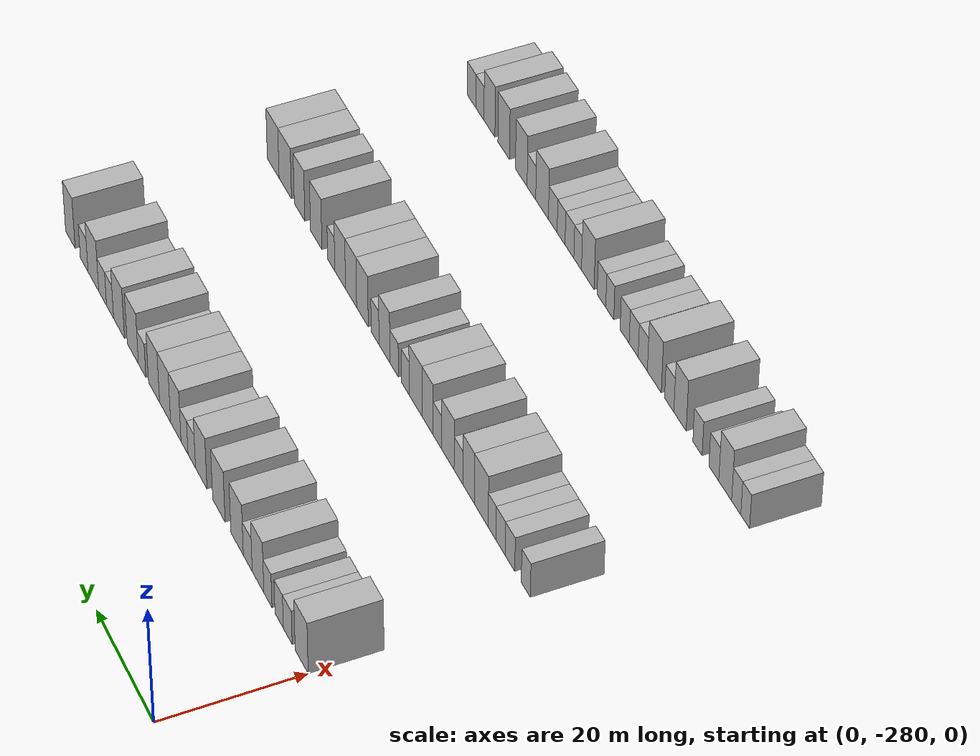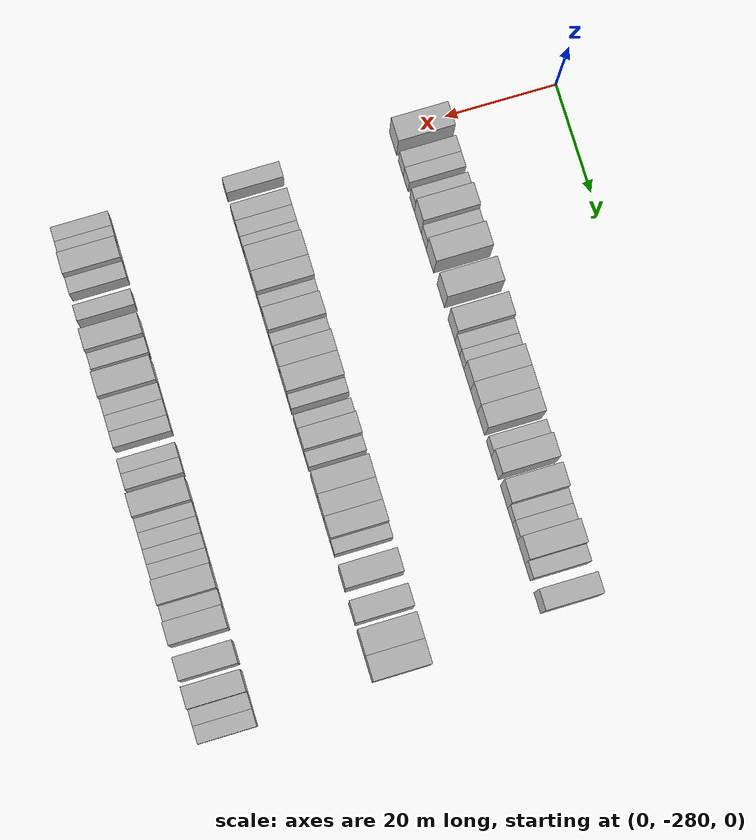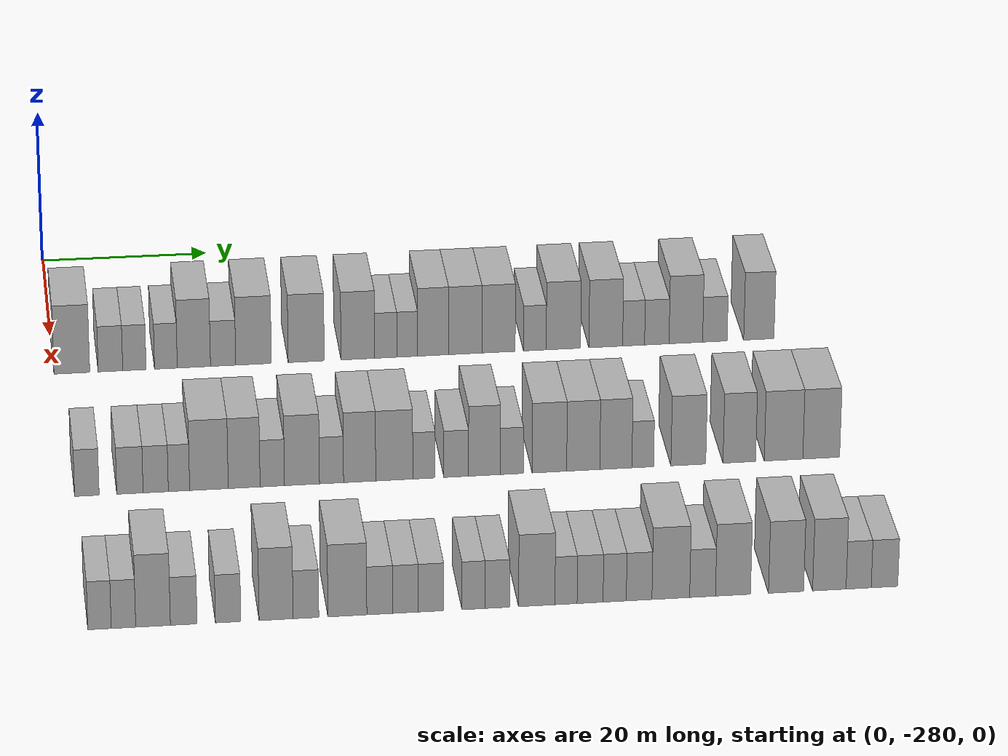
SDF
<sdf version="1.6">
 <world name="default">
  <model name="building_1">
   <static>1</static>
   <pose>25.0000 -277.8906 0 0.000000 0.000000 0.000000</pose>
   <link name="link">
    <pose>0 0 4.50 0 0 0</pose>
    <collision name="collision"><geometry><box><size>10.0000 4.2188 9.0000</size></box></geometry></collision>
    <visual name="visual">
     <cast_shadows>0</cast_shadows>
     <geometry><box><size>10.0000 4.2188 9.0000</size></box></geometry>
     <material>
      <script>
       <uri>model://HANNAS_wall/materials/scripts</uri>
       <uri>model://HANNAS_wall/materials/textures</uri>
       <name>vrc/HANNAS_wall</name>
      </script>
     </material>
    </visual>
   </link>
  </model>
  <model name="building_2">
   <static>1</static>
   <pose>25.0000 -273.3320 0 0.000000 0.000000 0.000000</pose>
   <link name="link">
    <pose>0 0 3.00 0 0 0</pose>
    <collision name="collision"><geometry><box><size>10.0000 2.8983 6.0000</size></box></geometry></collision>
    <visual name="visual">
     <cast_shadows>0</cast_shadows>
     <geometry><box><size>10.0000 2.8983 6.0000</size></box></geometry>
     <material>
      <script>
       <uri>model://HANNAS_wall/materials/scripts</uri>
       <uri>model://HANNAS_wall/materials/textures</uri>
       <name>vrc/HANNAS_wall</name>
      </script>
     </material>
    </visual>
   </link>
  </model>
  <model name="building_3">
   <static>1</static>
   <pose>25.0000 -270.5015 0 0.000000 0.000000 0.000000</pose>
   <link name="link">
    <pose>0 0 3.00 0 0 0</pose>
    <collision name="collision"><geometry><box><size>10.0000 2.7627 6.0000</size></box></geometry></collision>
    <visual name="visual">
     <cast_shadows>0</cast_shadows>
     <geometry><box><size>10.0000 2.7627 6.0000</size></box></geometry>
     <material>
      <script>
       <uri>model://HANNAS_wall/materials/scripts</uri>
       <uri>model://HANNAS_wall/materials/textures</uri>
       <name>vrc/HANNAS_wall</name>
      </script>
     </material>
    </visual>
   </link>
  </model>
  <model name="building_4">
   <static>1</static>
   <pose>25.0000 -266.7735 0 0.000000 0.000000 0.000000</pose>
   <link name="link">
    <pose>0 0 3.00 0 0 0</pose>
    <collision name="collision"><geometry><box><size>10.0000 2.6932 6.0000</size></box></geometry></collision>
    <visual name="visual">
     <cast_shadows>0</cast_shadows>
     <geometry><box><size>10.0000 2.6932 6.0000</size></box></geometry>
     <material>
      <script>
       <uri>model://HANNAS_wall/materials/scripts</uri>
       <uri>model://HANNAS_wall/materials/textures</uri>
       <name>vrc/HANNAS_wall</name>
      </script>
     </material>
    </visual>
   </link>
  </model>
  <model name="building_5">
   <static>1</static>
   <pose>25.0000 -263.4617 0 0.000000 0.000000 0.000000</pose>
   <link name="link">
    <pose>0 0 4.50 0 0 0</pose>
    <collision name="collision"><geometry><box><size>10.0000 3.9302 9.0000</size></box></geometry></collision>
    <visual name="visual">
     <cast_shadows>0</cast_shadows>
     <geometry><box><size>10.0000 3.9302 9.0000</size></box></geometry>
     <material>
      <script>
       <uri>model://HANNAS_wall/materials/scripts</uri>
       <uri>model://HANNAS_wall/materials/textures</uri>
       <name>vrc/HANNAS_wall</name>
      </script>
     </material>
    </visual>
   </link>
  </model>
  <model name="building_6">
   <static>1</static>
   <pose>25.0000 -259.9984 0 0.000000 0.000000 0.000000</pose>
   <link name="link">
    <pose>0 0 3.00 0 0 0</pose>
    <collision name="collision"><geometry><box><size>10.0000 2.9965 6.0000</size></box></geometry></collision>
    <visual name="visual">
     <cast_shadows>0</cast_shadows>
     <geometry><box><size>10.0000 2.9965 6.0000</size></box></geometry>
     <material>
      <script>
       <uri>model://HANNAS_wall/materials/scripts</uri>
       <uri>model://HANNAS_wall/materials/textures</uri>
       <name>vrc/HANNAS_wall</name>
      </script>
     </material>
    </visual>
   </link>
  </model>
  <model name="building_7">
   <static>1</static>
   <pose>25.0000 -256.3856 0 0.000000 0.000000 0.000000</pose>
   <link name="link">
    <pose>0 0 4.50 0 0 0</pose>
    <collision name="collision"><geometry><box><size>10.0000 4.2292 9.0000</size></box></geometry></collision>
    <visual name="visual">
     <cast_shadows>0</cast_shadows>
     <geometry><box><size>10.0000 4.2292 9.0000</size></box></geometry>
     <material>
      <script>
       <uri>model://HANNAS_wall/materials/scripts</uri>
       <uri>model://HANNAS_wall/materials/textures</uri>
       <name>vrc/HANNAS_wall</name>
      </script>
     </material>
    </visual>
   </link>
  </model>
  <model name="building_8">
   <static>1</static>
   <pose>25.0000 -250.1284 0 0.000000 0.000000 0.000000</pose>
   <link name="link">
    <pose>0 0 4.50 0 0 0</pose>
    <collision name="collision"><geometry><box><size>10.0000 4.2851 9.0000</size></box></geometry></collision>
    <visual name="visual">
     <cast_shadows>0</cast_shadows>
     <geometry><box><size>10.0000 4.2851 9.0000</size></box></geometry>
     <material>
      <script>
       <uri>model://HANNAS_wall/materials/scripts</uri>
       <uri>model://HANNAS_wall/materials/textures</uri>
       <name>vrc/HANNAS_wall</name>
      </script>
     </material>
    </visual>
   </link>
  </model>
  <model name="building_9">
   <static>1</static>
   <pose>25.0000 -243.9807 0 0.000000 0.000000 0.000000</pose>
   <link name="link">
    <pose>0 0 4.50 0 0 0</pose>
    <collision name="collision"><geometry><box><size>10.0000 4.0104 9.0000</size></box></geometry></collision>
    <visual name="visual">
     <cast_shadows>0</cast_shadows>
     <geometry><box><size>10.0000 4.0104 9.0000</size></box></geometry>
     <material>
      <script>
       <uri>model://HANNAS_wall/materials/scripts</uri>
       <uri>model://HANNAS_wall/materials/textures</uri>
       <name>vrc/HANNAS_wall</name>
      </script>
     </material>
    </visual>
   </link>
  </model>
  <model name="building_10">
   <static>1</static>
   <pose>25.0000 -240.6543 0 0.000000 0.000000 0.000000</pose>
   <link name="link">
    <pose>0 0 3.00 0 0 0</pose>
    <collision name="collision"><geometry><box><size>10.0000 2.6423 6.0000</size></box></geometry></collision>
    <visual name="visual">
     <cast_shadows>0</cast_shadows>
     <geometry><box><size>10.0000 2.6423 6.0000</size></box></geometry>
     <material>
      <script>
       <uri>model://HANNAS_wall/materials/scripts</uri>
       <uri>model://HANNAS_wall/materials/textures</uri>
       <name>vrc/HANNAS_wall</name>
      </script>
     </material>
    </visual>
   </link>
  </model>
  <model name="building_11">
   <static>1</static>
   <pose>25.0000 -238.0924 0 0.000000 0.000000 0.000000</pose>
   <link name="link">
    <pose>0 0 3.00 0 0 0</pose>
    <collision name="collision"><geometry><box><size>10.0000 2.4815 6.0000</size></box></geometry></collision>
    <visual name="visual">
     <cast_shadows>0</cast_shadows>
     <geometry><box><size>10.0000 2.4815 6.0000</size></box></geometry>
     <material>
      <script>
       <uri>model://HANNAS_wall/materials/scripts</uri>
       <uri>model://HANNAS_wall/materials/textures</uri>
       <name>vrc/HANNAS_wall</name>
      </script>
     </material>
    </visual>
   </link>
  </model>
  <model name="building_12">
   <static>1</static>
   <pose>25.0000 -234.9972 0 0.000000 0.000000 0.000000</pose>
   <link name="link">
    <pose>0 0 4.50 0 0 0</pose>
    <collision name="collision"><geometry><box><size>10.0000 3.7088 9.0000</size></box></geometry></collision>
    <visual name="visual">
     <cast_shadows>0</cast_shadows>
     <geometry><box><size>10.0000 3.7088 9.0000</size></box></geometry>
     <material>
      <script>
       <uri>model://HANNAS_wall/materials/scripts</uri>
       <uri>model://HANNAS_wall/materials/textures</uri>
       <name>vrc/HANNAS_wall</name>
      </script>
     </material>
    </visual>
   </link>
  </model>
  <model name="building_13">
   <static>1</static>
   <pose>25.0000 -231.1605 0 0.000000 0.000000 0.000000</pose>
   <link name="link">
    <pose>0 0 4.50 0 0 0</pose>
    <collision name="collision"><geometry><box><size>10.0000 3.9646 9.0000</size></box></geometry></collision>
    <visual name="visual">
     <cast_shadows>0</cast_shadows>
     <geometry><box><size>10.0000 3.9646 9.0000</size></box></geometry>
     <material>
      <script>
       <uri>model://HANNAS_wall/materials/scripts</uri>
       <uri>model://HANNAS_wall/materials/textures</uri>
       <name>vrc/HANNAS_wall</name>
      </script>
     </material>
    </visual>
   </link>
  </model>
  <model name="building_14">
   <static>1</static>
   <pose>25.0000 -227.1879 0 0.000000 0.000000 0.000000</pose>
   <link name="link">
    <pose>0 0 4.50 0 0 0</pose>
    <collision name="collision"><geometry><box><size>10.0000 3.9807 9.0000</size></box></geometry></collision>
    <visual name="visual">
     <cast_shadows>0</cast_shadows>
     <geometry><box><size>10.0000 3.9807 9.0000</size></box></geometry>
     <material>
      <script>
       <uri>model://HANNAS_wall/materials/scripts</uri>
       <uri>model://HANNAS_wall/materials/textures</uri>
       <name>vrc/HANNAS_wall</name>
      </script>
     </material>
    </visual>
   </link>
  </model>
  <model name="building_15">
   <static>1</static>
   <pose>25.0000 -222.8394 0 0.000000 0.000000 0.000000</pose>
   <link name="link">
    <pose>0 0 3.00 0 0 0</pose>
    <collision name="collision"><geometry><box><size>10.0000 2.7163 6.0000</size></box></geometry></collision>
    <visual name="visual">
     <cast_shadows>0</cast_shadows>
     <geometry><box><size>10.0000 2.7163 6.0000</size></box></geometry>
     <material>
      <script>
       <uri>model://HANNAS_wall/materials/scripts</uri>
       <uri>model://HANNAS_wall/materials/textures</uri>
       <name>vrc/HANNAS_wall</name>
      </script>
     </material>
    </visual>
   </link>
  </model>
  <model name="building_16">
   <static>1</static>
   <pose>25.0000 -219.4220 0 0.000000 0.000000 0.000000</pose>
   <link name="link">
    <pose>0 0 4.50 0 0 0</pose>
    <collision name="collision"><geometry><box><size>10.0000 4.1185 9.0000</size></box></geometry></collision>
    <visual name="visual">
     <cast_shadows>0</cast_shadows>
     <geometry><box><size>10.0000 4.1185 9.0000</size></box></geometry>
     <material>
      <script>
       <uri>model://HANNAS_wall/materials/scripts</uri>
       <uri>model://HANNAS_wall/materials/textures</uri>
       <name>vrc/HANNAS_wall</name>
      </script>
     </material>
    </visual>
   </link>
  </model>
  <model name="building_17">
   <static>1</static>
   <pose>25.0000 -214.3357 0 0.000000 0.000000 0.000000</pose>
   <link name="link">
    <pose>0 0 4.50 0 0 0</pose>
    <collision name="collision"><geometry><box><size>10.0000 4.0542 9.0000</size></box></geometry></collision>
    <visual name="visual">
     <cast_shadows>0</cast_shadows>
     <geometry><box><size>10.0000 4.0542 9.0000</size></box></geometry>
     <material>
      <script>
       <uri>model://HANNAS_wall/materials/scripts</uri>
       <uri>model://HANNAS_wall/materials/textures</uri>
       <name>vrc/HANNAS_wall</name>
      </script>
     </material>
    </visual>
   </link>
  </model>
  <model name="building_18">
   <static>1</static>
   <pose>25.0000 -210.9872 0 0.000000 0.000000 0.000000</pose>
   <link name="link">
    <pose>0 0 3.00 0 0 0</pose>
    <collision name="collision"><geometry><box><size>10.0000 2.6428 6.0000</size></box></geometry></collision>
    <visual name="visual">
     <cast_shadows>0</cast_shadows>
     <geometry><box><size>10.0000 2.6428 6.0000</size></box></geometry>
     <material>
      <script>
       <uri>model://HANNAS_wall/materials/scripts</uri>
       <uri>model://HANNAS_wall/materials/textures</uri>
       <name>vrc/HANNAS_wall</name>
      </script>
     </material>
    </visual>
   </link>
  </model>
  <model name="building_19">
   <static>1</static>
   <pose>25.0000 -208.1965 0 0.000000 0.000000 0.000000</pose>
   <link name="link">
    <pose>0 0 3.00 0 0 0</pose>
    <collision name="collision"><geometry><box><size>10.0000 2.9387 6.0000</size></box></geometry></collision>
    <visual name="visual">
     <cast_shadows>0</cast_shadows>
     <geometry><box><size>10.0000 2.9387 6.0000</size></box></geometry>
     <material>
      <script>
       <uri>model://HANNAS_wall/materials/scripts</uri>
       <uri>model://HANNAS_wall/materials/textures</uri>
       <name>vrc/HANNAS_wall</name>
      </script>
     </material>
    </visual>
   </link>
  </model>
  <model name="building_20">
   <static>1</static>
   <pose>25.0000 -204.7054 0 0.000000 0.000000 0.000000</pose>
   <link name="link">
    <pose>0 0 4.50 0 0 0</pose>
    <collision name="collision"><geometry><box><size>10.0000 4.0435 9.0000</size></box></geometry></collision>
    <visual name="visual">
     <cast_shadows>0</cast_shadows>
     <geometry><box><size>10.0000 4.0435 9.0000</size></box></geometry>
     <material>
      <script>
       <uri>model://HANNAS_wall/materials/scripts</uri>
       <uri>model://HANNAS_wall/materials/textures</uri>
       <name>vrc/HANNAS_wall</name>
      </script>
     </material>
    </visual>
   </link>
  </model>
  <model name="building_21">
   <static>1</static>
   <pose>25.0000 -201.2063 0 0.000000 0.000000 0.000000</pose>
   <link name="link">
    <pose>0 0 3.00 0 0 0</pose>
    <collision name="collision"><geometry><box><size>10.0000 2.9545 6.0000</size></box></geometry></collision>
    <visual name="visual">
     <cast_shadows>0</cast_shadows>
     <geometry><box><size>10.0000 2.9545 6.0000</size></box></geometry>
     <material>
      <script>
       <uri>model://HANNAS_wall/materials/scripts</uri>
       <uri>model://HANNAS_wall/materials/textures</uri>
       <name>vrc/HANNAS_wall</name>
      </script>
     </material>
    </visual>
   </link>
  </model>
  <model name="building_22">
   <static>1</static>
   <pose>25.0000 -195.9023 0 0.000000 0.000000 0.000000</pose>
   <link name="link">
    <pose>0 0 4.50 0 0 0</pose>
    <collision name="collision"><geometry><box><size>10.0000 3.6534 9.0000</size></box></geometry></collision>
    <visual name="visual">
     <cast_shadows>0</cast_shadows>
     <geometry><box><size>10.0000 3.6534 9.0000</size></box></geometry>
     <material>
      <script>
       <uri>model://HANNAS_wall/materials/scripts</uri>
       <uri>model://HANNAS_wall/materials/textures</uri>
       <name>vrc/HANNAS_wall</name>
      </script>
     </material>
    </visual>
   </link>
  </model>
  <model name="building_142">
   <static>1</static>
   <pose>55.0000 -277.6102 0 0.000000 0.000000 0.000000</pose>
   <link name="link">
    <pose>0 0 3.00 0 0 0</pose>
    <collision name="collision"><geometry><box><size>10.0000 2.7796 6.0000</size></box></geometry></collision>
    <visual name="visual">
     <cast_shadows>0</cast_shadows>
     <geometry><box><size>10.0000 2.7796 6.0000</size></box></geometry>
     <material>
      <script>
       <uri>model://HANNAS_wall/materials/scripts</uri>
       <uri>model://HANNAS_wall/materials/textures</uri>
       <name>vrc/HANNAS_wall</name>
      </script>
     </material>
    </visual>
   </link>
  </model>
  <model name="building_143">
   <static>1</static>
   <pose>55.0000 -272.7243 0 0.000000 0.000000 0.000000</pose>
   <link name="link">
    <pose>0 0 3.00 0 0 0</pose>
    <collision name="collision"><geometry><box><size>10.0000 2.9922 6.0000</size></box></geometry></collision>
    <visual name="visual">
     <cast_shadows>0</cast_shadows>
     <geometry><box><size>10.0000 2.9922 6.0000</size></box></geometry>
     <material>
      <script>
       <uri>model://HANNAS_wall/materials/scripts</uri>
       <uri>model://HANNAS_wall/materials/textures</uri>
       <name>vrc/HANNAS_wall</name>
      </script>
     </material>
    </visual>
   </link>
  </model>
  <model name="building_144">
   <static>1</static>
   <pose>55.0000 -269.7951 0 0.000000 0.000000 0.000000</pose>
   <link name="link">
    <pose>0 0 3.00 0 0 0</pose>
    <collision name="collision"><geometry><box><size>10.0000 2.8663 6.0000</size></box></geometry></collision>
    <visual name="visual">
     <cast_shadows>0</cast_shadows>
     <geometry><box><size>10.0000 2.8663 6.0000</size></box></geometry>
     <material>
      <script>
       <uri>model://HANNAS_wall/materials/scripts</uri>
       <uri>model://HANNAS_wall/materials/textures</uri>
       <name>vrc/HANNAS_wall</name>
      </script>
     </material>
    </visual>
   </link>
  </model>
  <model name="building_145">
   <static>1</static>
   <pose>55.0000 -267.1503 0 0.000000 0.000000 0.000000</pose>
   <link name="link">
    <pose>0 0 3.00 0 0 0</pose>
    <collision name="collision"><geometry><box><size>10.0000 2.4232 6.0000</size></box></geometry></collision>
    <visual name="visual">
     <cast_shadows>0</cast_shadows>
     <geometry><box><size>10.0000 2.4232 6.0000</size></box></geometry>
     <material>
      <script>
       <uri>model://HANNAS_wall/materials/scripts</uri>
       <uri>model://HANNAS_wall/materials/textures</uri>
       <name>vrc/HANNAS_wall</name>
      </script>
     </material>
    </visual>
   </link>
  </model>
  <model name="building_146">
   <static>1</static>
   <pose>55.0000 -263.7410 0 0.000000 0.000000 0.000000</pose>
   <link name="link">
    <pose>0 0 4.50 0 0 0</pose>
    <collision name="collision"><geometry><box><size>10.0000 4.3955 9.0000</size></box></geometry></collision>
    <visual name="visual">
     <cast_shadows>0</cast_shadows>
     <geometry><box><size>10.0000 4.3955 9.0000</size></box></geometry>
     <material>
      <script>
       <uri>model://HANNAS_wall/materials/scripts</uri>
       <uri>model://HANNAS_wall/materials/textures</uri>
       <name>vrc/HANNAS_wall</name>
      </script>
     </material>
    </visual>
   </link>
  </model>
  <model name="building_147">
   <static>1</static>
   <pose>55.0000 -259.7287 0 0.000000 0.000000 0.000000</pose>
   <link name="link">
    <pose>0 0 4.50 0 0 0</pose>
    <collision name="collision"><geometry><box><size>10.0000 3.6291 9.0000</size></box></geometry></collision>
    <visual name="visual">
     <cast_shadows>0</cast_shadows>
     <geometry><box><size>10.0000 3.6291 9.0000</size></box></geometry>
     <material>
      <script>
       <uri>model://HANNAS_wall/materials/scripts</uri>
       <uri>model://HANNAS_wall/materials/textures</uri>
       <name>vrc/HANNAS_wall</name>
      </script>
     </material>
    </visual>
   </link>
  </model>
  <model name="building_148">
   <static>1</static>
   <pose>55.0000 -256.5218 0 0.000000 0.000000 0.000000</pose>
   <link name="link">
    <pose>0 0 3.00 0 0 0</pose>
    <collision name="collision"><geometry><box><size>10.0000 2.7846 6.0000</size></box></geometry></collision>
    <visual name="visual">
     <cast_shadows>0</cast_shadows>
     <geometry><box><size>10.0000 2.7846 6.0000</size></box></geometry>
     <material>
      <script>
       <uri>model://HANNAS_wall/materials/scripts</uri>
       <uri>model://HANNAS_wall/materials/textures</uri>
       <name>vrc/HANNAS_wall</name>
      </script>
     </material>
    </visual>
   </link>
  </model>
  <model name="building_149">
   <static>1</static>
   <pose>55.0000 -253.1338 0 0.000000 0.000000 0.000000</pose>
   <link name="link">
    <pose>0 0 4.50 0 0 0</pose>
    <collision name="collision"><geometry><box><size>10.0000 3.9915 9.0000</size></box></geometry></collision>
    <visual name="visual">
     <cast_shadows>0</cast_shadows>
     <geometry><box><size>10.0000 3.9915 9.0000</size></box></geometry>
     <material>
      <script>
       <uri>model://HANNAS_wall/materials/scripts</uri>
       <uri>model://HANNAS_wall/materials/textures</uri>
       <name>vrc/HANNAS_wall</name>
      </script>
     </material>
    </visual>
   </link>
  </model>
  <model name="building_150">
   <static>1</static>
   <pose>55.0000 -249.7633 0 0.000000 0.000000 0.000000</pose>
   <link name="link">
    <pose>0 0 3.00 0 0 0</pose>
    <collision name="collision"><geometry><box><size>10.0000 2.7495 6.0000</size></box></geometry></collision>
    <visual name="visual">
     <cast_shadows>0</cast_shadows>
     <geometry><box><size>10.0000 2.7495 6.0000</size></box></geometry>
     <material>
      <script>
       <uri>model://HANNAS_wall/materials/scripts</uri>
       <uri>model://HANNAS_wall/materials/textures</uri>
       <name>vrc/HANNAS_wall</name>
      </script>
     </material>
    </visual>
   </link>
  </model>
  <model name="building_151">
   <static>1</static>
   <pose>55.0000 -246.5485 0 0.000000 0.000000 0.000000</pose>
   <link name="link">
    <pose>0 0 4.50 0 0 0</pose>
    <collision name="collision"><geometry><box><size>10.0000 3.6800 9.0000</size></box></geometry></collision>
    <visual name="visual">
     <cast_shadows>0</cast_shadows>
     <geometry><box><size>10.0000 3.6800 9.0000</size></box></geometry>
     <material>
      <script>
       <uri>model://HANNAS_wall/materials/scripts</uri>
       <uri>model://HANNAS_wall/materials/textures</uri>
       <name>vrc/HANNAS_wall</name>
      </script>
     </material>
    </visual>
   </link>
  </model>
  <model name="building_152">
   <static>1</static>
   <pose>55.0000 -242.5868 0 0.000000 0.000000 0.000000</pose>
   <link name="link">
    <pose>0 0 4.50 0 0 0</pose>
    <collision name="collision"><geometry><box><size>10.0000 4.2433 9.0000</size></box></geometry></collision>
    <visual name="visual">
     <cast_shadows>0</cast_shadows>
     <geometry><box><size>10.0000 4.2433 9.0000</size></box></geometry>
     <material>
      <script>
       <uri>model://HANNAS_wall/materials/scripts</uri>
       <uri>model://HANNAS_wall/materials/textures</uri>
       <name>vrc/HANNAS_wall</name>
      </script>
     </material>
    </visual>
   </link>
  </model>
  <model name="building_153">
   <static>1</static>
   <pose>55.0000 -239.1802 0 0.000000 0.000000 0.000000</pose>
   <link name="link">
    <pose>0 0 3.00 0 0 0</pose>
    <collision name="collision"><geometry><box><size>10.0000 2.5699 6.0000</size></box></geometry></collision>
    <visual name="visual">
     <cast_shadows>0</cast_shadows>
     <geometry><box><size>10.0000 2.5699 6.0000</size></box></geometry>
     <material>
      <script>
       <uri>model://HANNAS_wall/materials/scripts</uri>
       <uri>model://HANNAS_wall/materials/textures</uri>
       <name>vrc/HANNAS_wall</name>
      </script>
     </material>
    </visual>
   </link>
  </model>
  <model name="building_154">
   <static>1</static>
   <pose>55.0000 -235.4801 0 0.000000 0.000000 0.000000</pose>
   <link name="link">
    <pose>0 0 3.00 0 0 0</pose>
    <collision name="collision"><geometry><box><size>10.0000 2.8302 6.0000</size></box></geometry></collision>
    <visual name="visual">
     <cast_shadows>0</cast_shadows>
     <geometry><box><size>10.0000 2.8302 6.0000</size></box></geometry>
     <material>
      <script>
       <uri>model://HANNAS_wall/materials/scripts</uri>
       <uri>model://HANNAS_wall/materials/textures</uri>
       <name>vrc/HANNAS_wall</name>
      </script>
     </material>
    </visual>
   </link>
  </model>
  <model name="building_155">
   <static>1</static>
   <pose>55.0000 -232.2401 0 0.000000 0.000000 0.000000</pose>
   <link name="link">
    <pose>0 0 4.50 0 0 0</pose>
    <collision name="collision"><geometry><box><size>10.0000 3.6498 9.0000</size></box></geometry></collision>
    <visual name="visual">
     <cast_shadows>0</cast_shadows>
     <geometry><box><size>10.0000 3.6498 9.0000</size></box></geometry>
     <material>
      <script>
       <uri>model://HANNAS_wall/materials/scripts</uri>
       <uri>model://HANNAS_wall/materials/textures</uri>
       <name>vrc/HANNAS_wall</name>
      </script>
     </material>
    </visual>
   </link>
  </model>
  <model name="building_156">
   <static>1</static>
   <pose>55.0000 -229.0849 0 0.000000 0.000000 0.000000</pose>
   <link name="link">
    <pose>0 0 3.00 0 0 0</pose>
    <collision name="collision"><geometry><box><size>10.0000 2.6606 6.0000</size></box></geometry></collision>
    <visual name="visual">
     <cast_shadows>0</cast_shadows>
     <geometry><box><size>10.0000 2.6606 6.0000</size></box></geometry>
     <material>
      <script>
       <uri>model://HANNAS_wall/materials/scripts</uri>
       <uri>model://HANNAS_wall/materials/textures</uri>
       <name>vrc/HANNAS_wall</name>
      </script>
     </material>
    </visual>
   </link>
  </model>
  <model name="building_157">
   <static>1</static>
   <pose>55.0000 -224.7716 0 0.000000 0.000000 0.000000</pose>
   <link name="link">
    <pose>0 0 4.50 0 0 0</pose>
    <collision name="collision"><geometry><box><size>10.0000 3.9662 9.0000</size></box></geometry></collision>
    <visual name="visual">
     <cast_shadows>0</cast_shadows>
     <geometry><box><size>10.0000 3.9662 9.0000</size></box></geometry>
     <material>
      <script>
       <uri>model://HANNAS_wall/materials/scripts</uri>
       <uri>model://HANNAS_wall/materials/textures</uri>
       <name>vrc/HANNAS_wall</name>
      </script>
     </material>
    </visual>
   </link>
  </model>
  <model name="building_158">
   <static>1</static>
   <pose>55.0000 -220.8812 0 0.000000 0.000000 0.000000</pose>
   <link name="link">
    <pose>0 0 4.50 0 0 0</pose>
    <collision name="collision"><geometry><box><size>10.0000 3.8145 9.0000</size></box></geometry></collision>
    <visual name="visual">
     <cast_shadows>0</cast_shadows>
     <geometry><box><size>10.0000 3.8145 9.0000</size></box></geometry>
     <material>
      <script>
       <uri>model://HANNAS_wall/materials/scripts</uri>
       <uri>model://HANNAS_wall/materials/textures</uri>
       <name>vrc/HANNAS_wall</name>
      </script>
     </material>
    </visual>
   </link>
  </model>
  <model name="building_159">
   <static>1</static>
   <pose>55.0000 -217.1212 0 0.000000 0.000000 0.000000</pose>
   <link name="link">
    <pose>0 0 4.50 0 0 0</pose>
    <collision name="collision"><geometry><box><size>10.0000 3.7055 9.0000</size></box></geometry></collision>
    <visual name="visual">
     <cast_shadows>0</cast_shadows>
     <geometry><box><size>10.0000 3.7055 9.0000</size></box></geometry>
     <material>
      <script>
       <uri>model://HANNAS_wall/materials/scripts</uri>
       <uri>model://HANNAS_wall/materials/textures</uri>
       <name>vrc/HANNAS_wall</name>
      </script>
     </material>
    </visual>
   </link>
  </model>
  <model name="building_160">
   <static>1</static>
   <pose>55.0000 -214.0131 0 0.000000 0.000000 0.000000</pose>
   <link name="link">
    <pose>0 0 3.00 0 0 0</pose>
    <collision name="collision"><geometry><box><size>10.0000 2.5107 6.0000</size></box></geometry></collision>
    <visual name="visual">
     <cast_shadows>0</cast_shadows>
     <geometry><box><size>10.0000 2.5107 6.0000</size></box></geometry>
     <material>
      <script>
       <uri>model://HANNAS_wall/materials/scripts</uri>
       <uri>model://HANNAS_wall/materials/textures</uri>
       <name>vrc/HANNAS_wall</name>
      </script>
     </material>
    </visual>
   </link>
  </model>
  <model name="building_161">
   <static>1</static>
   <pose>55.0000 -208.7457 0 0.000000 0.000000 0.000000</pose>
   <link name="link">
    <pose>0 0 4.50 0 0 0</pose>
    <collision name="collision"><geometry><box><size>10.0000 4.0239 9.0000</size></box></geometry></collision>
    <visual name="visual">
     <cast_shadows>0</cast_shadows>
     <geometry><box><size>10.0000 4.0239 9.0000</size></box></geometry>
     <material>
      <script>
       <uri>model://HANNAS_wall/materials/scripts</uri>
       <uri>model://HANNAS_wall/materials/textures</uri>
       <name>vrc/HANNAS_wall</name>
      </script>
     </material>
    </visual>
   </link>
  </model>
  <model name="building_162">
   <static>1</static>
   <pose>55.0000 -202.8452 0 0.000000 0.000000 0.000000</pose>
   <link name="link">
    <pose>0 0 4.50 0 0 0</pose>
    <collision name="collision"><geometry><box><size>10.0000 3.7772 9.0000</size></box></geometry></collision>
    <visual name="visual">
     <cast_shadows>0</cast_shadows>
     <geometry><box><size>10.0000 3.7772 9.0000</size></box></geometry>
     <material>
      <script>
       <uri>model://HANNAS_wall/materials/scripts</uri>
       <uri>model://HANNAS_wall/materials/textures</uri>
       <name>vrc/HANNAS_wall</name>
      </script>
     </material>
    </visual>
   </link>
  </model>
  <model name="building_163">
   <static>1</static>
   <pose>55.0000 -197.7202 0 0.000000 0.000000 0.000000</pose>
   <link name="link">
    <pose>0 0 4.50 0 0 0</pose>
    <collision name="collision"><geometry><box><size>10.0000 4.4728 9.0000</size></box></geometry></collision>
    <visual name="visual">
     <cast_shadows>0</cast_shadows>
     <geometry><box><size>10.0000 4.4728 9.0000</size></box></geometry>
     <material>
      <script>
       <uri>model://HANNAS_wall/materials/scripts</uri>
       <uri>model://HANNAS_wall/materials/textures</uri>
       <name>vrc/HANNAS_wall</name>
      </script>
     </material>
    </visual>
   </link>
  </model>
  <model name="building_164">
   <static>1</static>
   <pose>55.0000 -193.3458 0 0.000000 0.000000 0.000000</pose>
   <link name="link">
    <pose>0 0 4.50 0 0 0</pose>
    <collision name="collision"><geometry><box><size>10.0000 4.2761 9.0000</size></box></geometry></collision>
    <visual name="visual">
     <cast_shadows>0</cast_shadows>
     <geometry><box><size>10.0000 4.2761 9.0000</size></box></geometry>
     <material>
      <script>
       <uri>model://HANNAS_wall/materials/scripts</uri>
       <uri>model://HANNAS_wall/materials/textures</uri>
       <name>vrc/HANNAS_wall</name>
      </script>
     </material>
    </visual>
   </link>
  </model>
  <model name="building_286">
   <static>1</static>
   <pose>85.0000 -277.7254 0 0.000000 0.000000 0.000000</pose>
   <link name="link">
    <pose>0 0 3.00 0 0 0</pose>
    <collision name="collision"><geometry><box><size>10.0000 2.5492 6.0000</size></box></geometry></collision>
    <visual name="visual">
     <cast_shadows>0</cast_shadows>
     <geometry><box><size>10.0000 2.5492 6.0000</size></box></geometry>
     <material>
      <script>
       <uri>model://HANNAS_wall/materials/scripts</uri>
       <uri>model://HANNAS_wall/materials/textures</uri>
       <name>vrc/HANNAS_wall</name>
      </script>
     </material>
    </visual>
   </link>
  </model>
  <model name="building_287">
   <static>1</static>
   <pose>85.0000 -275.1201 0 0.000000 0.000000 0.000000</pose>
   <link name="link">
    <pose>0 0 3.00 0 0 0</pose>
    <collision name="collision"><geometry><box><size>10.0000 2.6614 6.0000</size></box></geometry></collision>
    <visual name="visual">
     <cast_shadows>0</cast_shadows>
     <geometry><box><size>10.0000 2.6614 6.0000</size></box></geometry>
     <material>
      <script>
       <uri>model://HANNAS_wall/materials/scripts</uri>
       <uri>model://HANNAS_wall/materials/textures</uri>
       <name>vrc/HANNAS_wall</name>
      </script>
     </material>
    </visual>
   </link>
  </model>
  <model name="building_288">
   <static>1</static>
   <pose>85.0000 -271.9018 0 0.000000 0.000000 0.000000</pose>
   <link name="link">
    <pose>0 0 4.50 0 0 0</pose>
    <collision name="collision"><geometry><box><size>10.0000 3.7751 9.0000</size></box></geometry></collision>
    <visual name="visual">
     <cast_shadows>0</cast_shadows>
     <geometry><box><size>10.0000 3.7751 9.0000</size></box></geometry>
     <material>
      <script>
       <uri>model://HANNAS_wall/materials/scripts</uri>
       <uri>model://HANNAS_wall/materials/textures</uri>
       <name>vrc/HANNAS_wall</name>
      </script>
     </material>
    </visual>
   </link>
  </model>
  <model name="building_289">
   <static>1</static>
   <pose>85.0000 -268.5586 0 0.000000 0.000000 0.000000</pose>
   <link name="link">
    <pose>0 0 3.00 0 0 0</pose>
    <collision name="collision"><geometry><box><size>10.0000 2.9113 6.0000</size></box></geometry></collision>
    <visual name="visual">
     <cast_shadows>0</cast_shadows>
     <geometry><box><size>10.0000 2.9113 6.0000</size></box></geometry>
     <material>
      <script>
       <uri>model://HANNAS_wall/materials/scripts</uri>
       <uri>model://HANNAS_wall/materials/textures</uri>
       <name>vrc/HANNAS_wall</name>
      </script>
     </material>
    </visual>
   </link>
  </model>
  <model name="building_290">
   <static>1</static>
   <pose>85.0000 -263.7165 0 0.000000 0.000000 0.000000</pose>
   <link name="link">
    <pose>0 0 3.00 0 0 0</pose>
    <collision name="collision"><geometry><box><size>10.0000 2.7729 6.0000</size></box></geometry></collision>
    <visual name="visual">
     <cast_shadows>0</cast_shadows>
     <geometry><box><size>10.0000 2.7729 6.0000</size></box></geometry>
     <material>
      <script>
       <uri>model://HANNAS_wall/materials/scripts</uri>
       <uri>model://HANNAS_wall/materials/textures</uri>
       <name>vrc/HANNAS_wall</name>
      </script>
     </material>
    </visual>
   </link>
  </model>
  <model name="building_291">
   <static>1</static>
   <pose>85.0000 -258.4697 0 0.000000 0.000000 0.000000</pose>
   <link name="link">
    <pose>0 0 4.50 0 0 0</pose>
    <collision name="collision"><geometry><box><size>10.0000 3.7206 9.0000</size></box></geometry></collision>
    <visual name="visual">
     <cast_shadows>0</cast_shadows>
     <geometry><box><size>10.0000 3.7206 9.0000</size></box></geometry>
     <material>
      <script>
       <uri>model://HANNAS_wall/materials/scripts</uri>
       <uri>model://HANNAS_wall/materials/textures</uri>
       <name>vrc/HANNAS_wall</name>
      </script>
     </material>
    </visual>
   </link>
  </model>
  <model name="building_292">
   <static>1</static>
   <pose>85.0000 -255.2043 0 0.000000 0.000000 0.000000</pose>
   <link name="link">
    <pose>0 0 3.00 0 0 0</pose>
    <collision name="collision"><geometry><box><size>10.0000 2.8102 6.0000</size></box></geometry></collision>
    <visual name="visual">
     <cast_shadows>0</cast_shadows>
     <geometry><box><size>10.0000 2.8102 6.0000</size></box></geometry>
     <material>
      <script>
       <uri>model://HANNAS_wall/materials/scripts</uri>
       <uri>model://HANNAS_wall/materials/textures</uri>
       <name>vrc/HANNAS_wall</name>
      </script>
     </material>
    </visual>
   </link>
  </model>
  <model name="building_293">
   <static>1</static>
   <pose>85.0000 -250.6682 0 0.000000 0.000000 0.000000</pose>
   <link name="link">
    <pose>0 0 4.50 0 0 0</pose>
    <collision name="collision"><geometry><box><size>10.0000 4.2619 9.0000</size></box></geometry></collision>
    <visual name="visual">
     <cast_shadows>0</cast_shadows>
     <geometry><box><size>10.0000 4.2619 9.0000</size></box></geometry>
     <material>
      <script>
       <uri>model://HANNAS_wall/materials/scripts</uri>
       <uri>model://HANNAS_wall/materials/textures</uri>
       <name>vrc/HANNAS_wall</name>
      </script>
     </material>
    </visual>
   </link>
  </model>
  <model name="building_294">
   <static>1</static>
   <pose>85.0000 -247.1103 0 0.000000 0.000000 0.000000</pose>
   <link name="link">
    <pose>0 0 3.00 0 0 0</pose>
    <collision name="collision"><geometry><box><size>10.0000 2.8539 6.0000</size></box></geometry></collision>
    <visual name="visual">
     <cast_shadows>0</cast_shadows>
     <geometry><box><size>10.0000 2.8539 6.0000</size></box></geometry>
     <material>
      <script>
       <uri>model://HANNAS_wall/materials/scripts</uri>
       <uri>model://HANNAS_wall/materials/textures</uri>
       <name>vrc/HANNAS_wall</name>
      </script>
     </material>
    </visual>
   </link>
  </model>
  <model name="building_295">
   <static>1</static>
   <pose>85.0000 -244.2860 0 0.000000 0.000000 0.000000</pose>
   <link name="link">
    <pose>0 0 3.00 0 0 0</pose>
    <collision name="collision"><geometry><box><size>10.0000 2.7947 6.0000</size></box></geometry></collision>
    <visual name="visual">
     <cast_shadows>0</cast_shadows>
     <geometry><box><size>10.0000 2.7947 6.0000</size></box></geometry>
     <material>
      <script>
       <uri>model://HANNAS_wall/materials/scripts</uri>
       <uri>model://HANNAS_wall/materials/textures</uri>
       <name>vrc/HANNAS_wall</name>
      </script>
     </material>
    </visual>
   </link>
  </model>
  <model name="building_296">
   <static>1</static>
   <pose>85.0000 -241.4892 0 0.000000 0.000000 0.000000</pose>
   <link name="link">
    <pose>0 0 3.00 0 0 0</pose>
    <collision name="collision"><geometry><box><size>10.0000 2.7990 6.0000</size></box></geometry></collision>
    <visual name="visual">
     <cast_shadows>0</cast_shadows>
     <geometry><box><size>10.0000 2.7990 6.0000</size></box></geometry>
     <material>
      <script>
       <uri>model://HANNAS_wall/materials/scripts</uri>
       <uri>model://HANNAS_wall/materials/textures</uri>
       <name>vrc/HANNAS_wall</name>
      </script>
     </material>
    </visual>
   </link>
  </model>
  <model name="building_297">
   <static>1</static>
   <pose>85.0000 -236.8275 0 0.000000 0.000000 0.000000</pose>
   <link name="link">
    <pose>0 0 3.00 0 0 0</pose>
    <collision name="collision"><geometry><box><size>10.0000 2.5243 6.0000</size></box></geometry></collision>
    <visual name="visual">
     <cast_shadows>0</cast_shadows>
     <geometry><box><size>10.0000 2.5243 6.0000</size></box></geometry>
     <material>
      <script>
       <uri>model://HANNAS_wall/materials/scripts</uri>
       <uri>model://HANNAS_wall/materials/textures</uri>
       <name>vrc/HANNAS_wall</name>
      </script>
     </material>
    </visual>
   </link>
  </model>
  <model name="building_298">
   <static>1</static>
   <pose>85.0000 -234.2091 0 0.000000 0.000000 0.000000</pose>
   <link name="link">
    <pose>0 0 3.00 0 0 0</pose>
    <collision name="collision"><geometry><box><size>10.0000 2.7125 6.0000</size></box></geometry></collision>
    <visual name="visual">
     <cast_shadows>0</cast_shadows>
     <geometry><box><size>10.0000 2.7125 6.0000</size></box></geometry>
     <material>
      <script>
       <uri>model://HANNAS_wall/materials/scripts</uri>
       <uri>model://HANNAS_wall/materials/textures</uri>
       <name>vrc/HANNAS_wall</name>
      </script>
     </material>
    </visual>
   </link>
  </model>
  <model name="building_299">
   <static>1</static>
   <pose>85.0000 -229.8491 0 0.000000 0.000000 0.000000</pose>
   <link name="link">
    <pose>0 0 4.50 0 0 0</pose>
    <collision name="collision"><geometry><box><size>10.0000 4.0074 9.0000</size></box></geometry></collision>
    <visual name="visual">
     <cast_shadows>0</cast_shadows>
     <geometry><box><size>10.0000 4.0074 9.0000</size></box></geometry>
     <material>
      <script>
       <uri>model://HANNAS_wall/materials/scripts</uri>
       <uri>model://HANNAS_wall/materials/textures</uri>
       <name>vrc/HANNAS_wall</name>
      </script>
     </material>
    </visual>
   </link>
  </model>
  <model name="building_300">
   <static>1</static>
   <pose>85.0000 -226.6196 0 0.000000 0.000000 0.000000</pose>
   <link name="link">
    <pose>0 0 3.00 0 0 0</pose>
    <collision name="collision"><geometry><box><size>10.0000 2.4516 6.0000</size></box></geometry></collision>
    <visual name="visual">
     <cast_shadows>0</cast_shadows>
     <geometry><box><size>10.0000 2.4516 6.0000</size></box></geometry>
     <material>
      <script>
       <uri>model://HANNAS_wall/materials/scripts</uri>
       <uri>model://HANNAS_wall/materials/textures</uri>
       <name>vrc/HANNAS_wall</name>
      </script>
     </material>
    </visual>
   </link>
  </model>
  <model name="building_301">
   <static>1</static>
   <pose>85.0000 -223.9600 0 0.000000 0.000000 0.000000</pose>
   <link name="link">
    <pose>0 0 3.00 0 0 0</pose>
    <collision name="collision"><geometry><box><size>10.0000 2.8676 6.0000</size></box></geometry></collision>
    <visual name="visual">
     <cast_shadows>0</cast_shadows>
     <geometry><box><size>10.0000 2.8676 6.0000</size></box></geometry>
     <material>
      <script>
       <uri>model://HANNAS_wall/materials/scripts</uri>
       <uri>model://HANNAS_wall/materials/textures</uri>
       <name>vrc/HANNAS_wall</name>
      </script>
     </material>
    </visual>
   </link>
  </model>
  <model name="building_302">
   <static>1</static>
   <pose>85.0000 -221.2422 0 0.000000 0.000000 0.000000</pose>
   <link name="link">
    <pose>0 0 3.00 0 0 0</pose>
    <collision name="collision"><geometry><box><size>10.0000 2.5681 6.0000</size></box></geometry></collision>
    <visual name="visual">
     <cast_shadows>0</cast_shadows>
     <geometry><box><size>10.0000 2.5681 6.0000</size></box></geometry>
     <material>
      <script>
       <uri>model://HANNAS_wall/materials/scripts</uri>
       <uri>model://HANNAS_wall/materials/textures</uri>
       <name>vrc/HANNAS_wall</name>
      </script>
     </material>
    </visual>
   </link>
  </model>
  <model name="building_303">
   <static>1</static>
   <pose>85.0000 -218.5383 0 0.000000 0.000000 0.000000</pose>
   <link name="link">
    <pose>0 0 3.00 0 0 0</pose>
    <collision name="collision"><geometry><box><size>10.0000 2.8396 6.0000</size></box></geometry></collision>
    <visual name="visual">
     <cast_shadows>0</cast_shadows>
     <geometry><box><size>10.0000 2.8396 6.0000</size></box></geometry>
     <material>
      <script>
       <uri>model://HANNAS_wall/materials/scripts</uri>
       <uri>model://HANNAS_wall/materials/textures</uri>
       <name>vrc/HANNAS_wall</name>
      </script>
     </material>
    </visual>
   </link>
  </model>
  <model name="building_304">
   <static>1</static>
   <pose>85.0000 -215.0290 0 0.000000 0.000000 0.000000</pose>
   <link name="link">
    <pose>0 0 4.50 0 0 0</pose>
    <collision name="collision"><geometry><box><size>10.0000 4.1791 9.0000</size></box></geometry></collision>
    <visual name="visual">
     <cast_shadows>0</cast_shadows>
     <geometry><box><size>10.0000 4.1791 9.0000</size></box></geometry>
     <material>
      <script>
       <uri>model://HANNAS_wall/materials/scripts</uri>
       <uri>model://HANNAS_wall/materials/textures</uri>
       <name>vrc/HANNAS_wall</name>
      </script>
     </material>
    </visual>
   </link>
  </model>
  <model name="building_305">
   <static>1</static>
   <pose>85.0000 -211.5102 0 0.000000 0.000000 0.000000</pose>
   <link name="link">
    <pose>0 0 3.00 0 0 0</pose>
    <collision name="collision"><geometry><box><size>10.0000 2.8585 6.0000</size></box></geometry></collision>
    <visual name="visual">
     <cast_shadows>0</cast_shadows>
     <geometry><box><size>10.0000 2.8585 6.0000</size></box></geometry>
     <material>
      <script>
       <uri>model://HANNAS_wall/materials/scripts</uri>
       <uri>model://HANNAS_wall/materials/textures</uri>
       <name>vrc/HANNAS_wall</name>
      </script>
     </material>
    </visual>
   </link>
  </model>
  <model name="building_306">
   <static>1</static>
   <pose>85.0000 -208.1367 0 0.000000 0.000000 0.000000</pose>
   <link name="link">
    <pose>0 0 4.50 0 0 0</pose>
    <collision name="collision"><geometry><box><size>10.0000 3.8886 9.0000</size></box></geometry></collision>
    <visual name="visual">
     <cast_shadows>0</cast_shadows>
     <geometry><box><size>10.0000 3.8886 9.0000</size></box></geometry>
     <material>
      <script>
       <uri>model://HANNAS_wall/materials/scripts</uri>
       <uri>model://HANNAS_wall/materials/textures</uri>
       <name>vrc/HANNAS_wall</name>
      </script>
     </material>
    </visual>
   </link>
  </model>
  <model name="building_307">
   <static>1</static>
   <pose>85.0000 -202.2377 0 0.000000 0.000000 0.000000</pose>
   <link name="link">
    <pose>0 0 4.50 0 0 0</pose>
    <collision name="collision"><geometry><box><size>10.0000 3.9094 9.0000</size></box></geometry></collision>
    <visual name="visual">
     <cast_shadows>0</cast_shadows>
     <geometry><box><size>10.0000 3.9094 9.0000</size></box></geometry>
     <material>
      <script>
       <uri>model://HANNAS_wall/materials/scripts</uri>
       <uri>model://HANNAS_wall/materials/textures</uri>
       <name>vrc/HANNAS_wall</name>
      </script>
     </material>
    </visual>
   </link>
  </model>
  <model name="building_308">
   <static>1</static>
   <pose>85.0000 -197.4183 0 0.000000 0.000000 0.000000</pose>
   <link name="link">
    <pose>0 0 4.50 0 0 0</pose>
    <collision name="collision"><geometry><box><size>10.0000 3.7295 9.0000</size></box></geometry></collision>
    <visual name="visual">
     <cast_shadows>0</cast_shadows>
     <geometry><box><size>10.0000 3.7295 9.0000</size></box></geometry>
     <material>
      <script>
       <uri>model://HANNAS_wall/materials/scripts</uri>
       <uri>model://HANNAS_wall/materials/textures</uri>
       <name>vrc/HANNAS_wall</name>
      </script>
     </material>
    </visual>
   </link>
  </model>
  <model name="building_309">
   <static>1</static>
   <pose>85.0000 -194.1533 0 0.000000 0.000000 0.000000</pose>
   <link name="link">
    <pose>0 0 3.00 0 0 0</pose>
    <collision name="collision"><geometry><box><size>10.0000 2.8004 6.0000</size></box></geometry></collision>
    <visual name="visual">
     <cast_shadows>0</cast_shadows>
     <geometry><box><size>10.0000 2.8004 6.0000</size></box></geometry>
     <material>
      <script>
       <uri>model://HANNAS_wall/materials/scripts</uri>
       <uri>model://HANNAS_wall/materials/textures</uri>
       <name>vrc/HANNAS_wall</name>
      </script>
     </material>
    </visual>
   </link>
  </model>
  <model name="building_310">
   <static>1</static>
   <pose>85.0000 -191.2730 0 0.000000 0.000000 0.000000</pose>
   <link name="link">
    <pose>0 0 3.00 0 0 0</pose>
    <collision name="collision"><geometry><box><size>10.0000 2.9602 6.0000</size></box></geometry></collision>
    <visual name="visual">
     <cast_shadows>0</cast_shadows>
     <geometry><box><size>10.0000 2.9602 6.0000</size></box></geometry>
     <material>
      <script>
       <uri>model://HANNAS_wall/materials/scripts</uri>
       <uri>model://HANNAS_wall/materials/textures</uri>
       <name>vrc/HANNAS_wall</name>
      </script>
     </material>
    </visual>
   </link>
  </model>
 </world>
</sdf>
